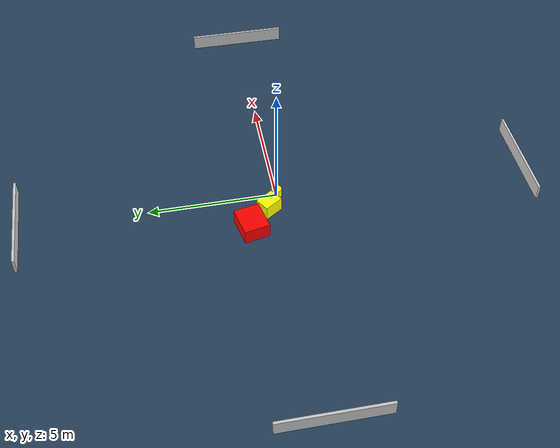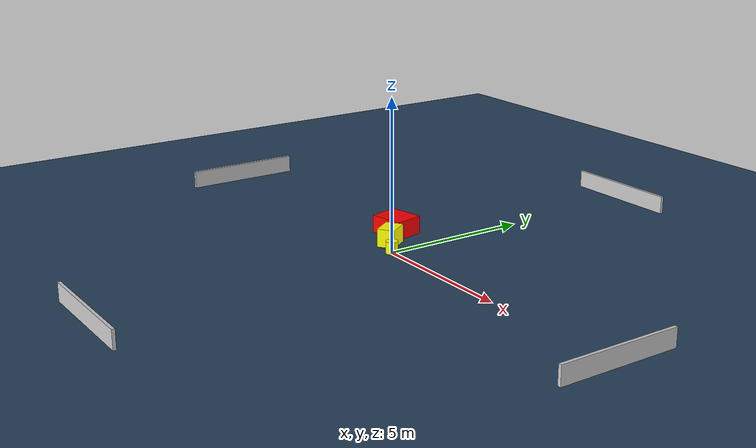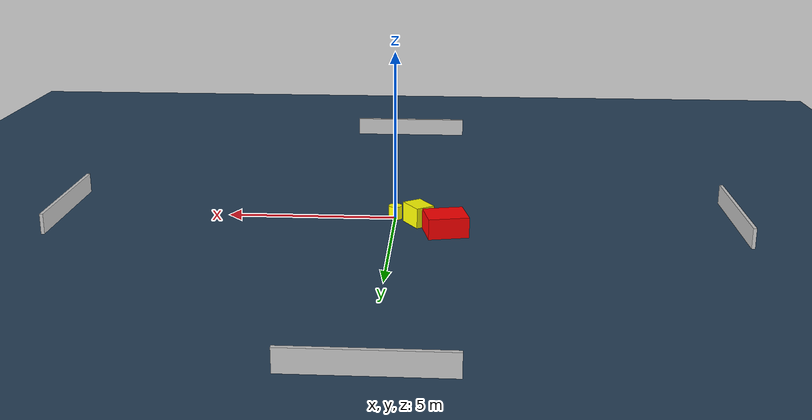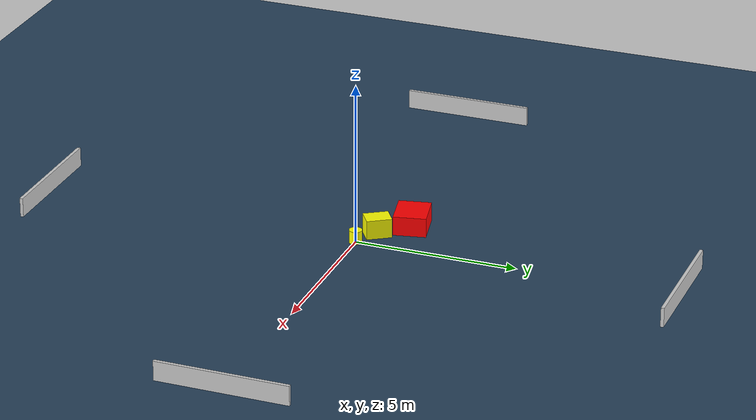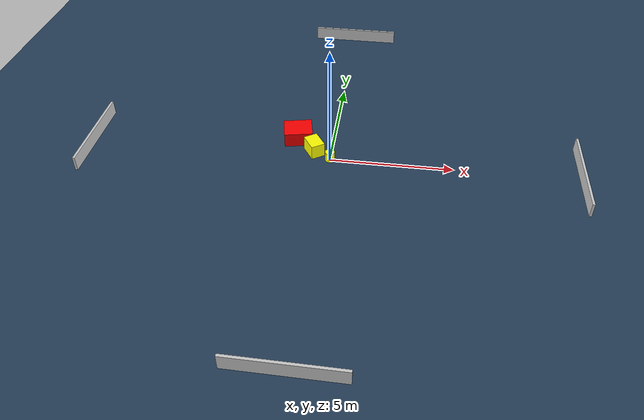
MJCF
<?xml version="1.0" ?>
<mujoco model="generated_environment">
  <option timestep="0.01" integrator="RK4" cone="elliptic"/>
  <default>
    <geom density="1"/>
  </default>
  <asset>
    <texture builtin="gradient" height="3072" name="skybox" rgb1="0.3 0.5 0.7" rgb2="0 0 0" type="skybox" width="512"/>
    <texture builtin="checker" height="300" name="groundplane" rgb1="0.2 0.3 0.4" rgb2="0.1 0.2 0.3" type="2d" width="300"/>
    <material name="groundplane" reflectance="0.2" texrepeat="5 5" texture="groundplane"/>
  </asset>
  <worldbody>
    <light dir="0 0 -1" directional="true" pos="0 0 1.5"/>
    <geom condim="3" friction="0.5 0.005 0.001" material="groundplane" name="floor" pos="0 0 0" size="0 0 0.05" type="plane"/>
    <body name="walls">
      <geom name="wall_1" condim="4" pos="-10.0 0.0 0.3" rgba="0.800000011920929 0.800000011920929 0.800000011920929 1.0" size="0.05 2.0 0.3" type="box"/>
      <geom name="wall_2" condim="4" pos="10.0 0.0 0.3" rgba="0.800000011920929 0.800000011920929 0.800000011920929 1.0" size="0.05 2.0 0.3" type="box"/>
      <geom name="wall_3" condim="4" pos="0.0 -10.0 0.3" rgba="0.800000011920929 0.800000011920929 0.800000011920929 1.0" size="2.0 0.05 0.3" type="box"/>
      <geom name="wall_4" condim="4" pos="0.0 10.0 0.3" rgba="0.800000011920929 0.800000011920929 0.800000011920929 1.0" size="2.0 0.05 0.3" type="box"/>
    </body>
    <body name="robot">
      <joint name="joint_x" type="slide" pos="0 0 0" axis="1 0 0"/>
      <joint name="joint_y" type="slide" pos="0 0 0" axis="0 1 0"/>
      <geom name="robot" type="cylinder" pos="0.0 0.0 0.2" size="0.2 0.2 0.0" mass="5.0" friction="1.0 0.005 0.0001" condim="4" rgba="1.0 1.0 0.0 1.0"/>
    </body>
    <body name="obstacle_1_movable">
      <geom name="obstacle_1_movable" condim="4" pos="-0.7063902509688159 0.4185542745082227 0.3" euler="0 0 33.38206537545959" friction="0.0 0.005 0.001" rgba="1.0 1.0 0.0 1.0" size="0.28997415449790664 0.38950709560421937 0.3" type="box" mass="0.1"/>
      <joint type="free"/>
    </body>
    <body name="obstacle_2_static">
      <geom name="obstacle_2_static" condim="4" pos="-1.5129635746318189 1.2245655632117756 0.3" euler="0 0 281.9479661837266" friction="0.0 0.005 0.001" rgba="1.0 0.0 0.0 1.0" size="0.49994042723161186 0.5881298786512192 0.3" type="box"/>
    </body>
  </worldbody>
  <actuator>
    <motor name="actuator_x" joint="joint_x" gear="1" ctrlrange="-1 1"/>
    <motor name="actuator_y" joint="joint_y" gear="1" ctrlrange="-1 1"/>
  </actuator>
</mujoco>
